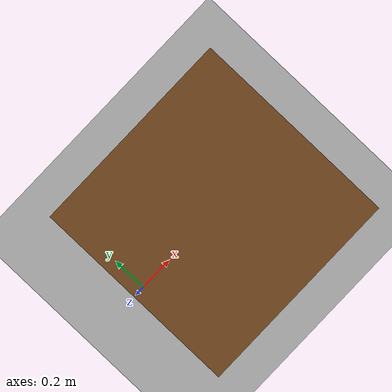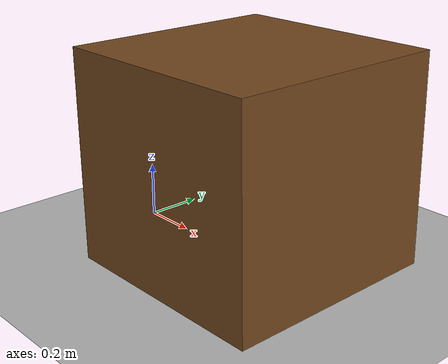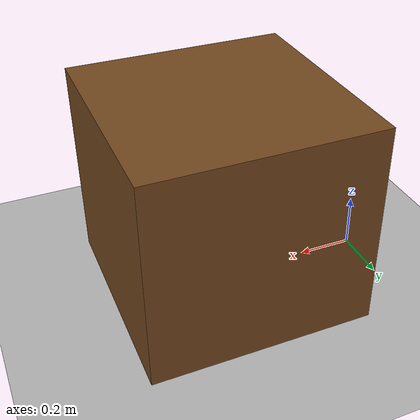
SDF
<?xml version="1.0" ?>
<sdf version="1.8">
  <world name="embodied_tabletop">

    <physics name="default_physics" type="ignored">
      <max_step_size>0.001</max_step_size>
      <real_time_factor>1.0</real_time_factor>
    </physics>

    <plugin
      filename="libignition-gazebo-physics-system.so"
      name="ignition::gazebo::systems::Physics"/>

    <plugin
      filename="libignition-gazebo-user-commands-system.so"
      name="ignition::gazebo::systems::UserCommands"/>

    <plugin
      filename="libignition-gazebo-scene-broadcaster-system.so"
      name="ignition::gazebo::systems::SceneBroadcaster"/>

    <gravity>0 0 -9.81</gravity>

    <scene>
      <ambient>0.4 0.4 0.4 1</ambient>
      <background>0.8 0.8 0.8 1</background>
      <shadows>true</shadows>
    </scene>

    <light type="directional" name="sun">
      <cast_shadows>true</cast_shadows>
      <pose>0 0 10 0 0 0</pose>
      <diffuse>0.8 0.8 0.8 1</diffuse>
      <specular>0.2 0.2 0.2 1</specular>
      <direction>-0.5 0.1 -0.9</direction>
    </light>

    <model name="ground_plane">
      <static>true</static>
      <link name="ground_link">
        <collision name="ground_collision">
          <geometry>
            <plane>
              <normal>0 0 1</normal>
              <size>10 10</size>
            </plane>
          </geometry>
        </collision>

        <visual name="ground_visual">
          <geometry>
            <plane>
              <normal>0 0 1</normal>
              <size>10 10</size>
            </plane>
          </geometry>
          <material>
            <ambient>0.7 0.7 0.7 1</ambient>
            <diffuse>0.7 0.7 0.7 1</diffuse>
          </material>
        </visual>
      </link>
    </model>

    <model name="work_table">
      <static>true</static>
      <pose>0.55 0 0.375 0 0 0</pose>

      <link name="table_link">
        <collision name="table_collision">
          <geometry>
            <box>
              <size>0.8 0.8 0.75</size>
            </box>
          </geometry>
        </collision>

        <visual name="table_visual">
          <geometry>
            <box>
              <size>0.8 0.8 0.75</size>
            </box>
          </geometry>
          <material>
            <ambient>0.45 0.28 0.12 1</ambient>
            <diffuse>0.45 0.28 0.12 1</diffuse>
          </material>
        </visual>
      </link>
    </model>

  </world>
</sdf>
